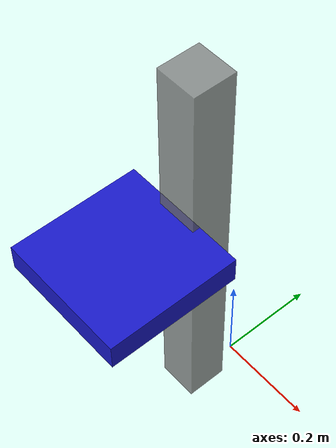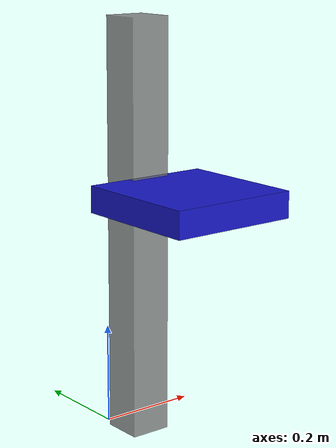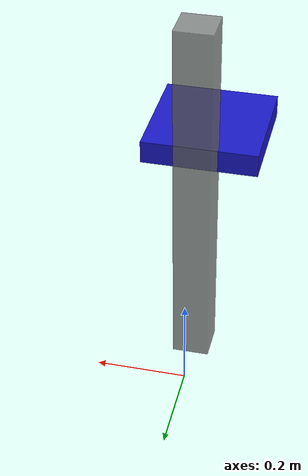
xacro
<?xml version="1.0"?>
<robot name="linear_guide" xmlns:xacro="http://ros.org/wiki/xacro">

  <link name="column">
    <visual>
      <geometry>
        <box size="0.08 0.08 0.8"/>
      </geometry>
      <origin xyz="0 -0.1 0.42" rpy="0 0 0"/>
      <material name="grey">
        <color rgba="0.5 0.5 0.5 0.8"/>
      </material>
    </visual>
    <collision>
      <geometry>
        <box size="0.08 0.08 0.8"/>
      </geometry>
      <origin xyz="0 -0.1 0.37" rpy="0 0 0"/>
    </collision>
    <inertial>
      <mass value="0.0001"/>
      <inertia ixx="0.1" iyy="0.1" izz="0.1" ixy="0.0" ixz="0.0" iyz="0.0"/>
    </inertial>
  </link>

    <gazebo reference="column">
      <material>Gazebo/Orange</material>
  </gazebo>

  <link name="slider">
    <visual>
      <geometry>
        <box size="0.25 0.25 0.05"/>
      </geometry>
      <origin xyz="0 -0.25 0.05" rpy="0 0 0"/>
      <material name="blue">
        <color rgba="0.1 0.1 0.8 1.0"/>
      </material>
    </visual>
    <collision>
      <geometry>
        <box size="0.25 0.25 0.05"/>
      </geometry>
      <origin xyz="0 -0.25 0.05" rpy="0 0 0"/>
    </collision>

    <inertial>
      <mass value="0.0001"/>
      <inertia ixx="0.1" iyy="0.1" izz="0.1" ixy="0.0" ixz="0.0" iyz="0.0"/>
    </inertial>
  </link>
 <gazebo reference="slider">
      <material>Gazebo/Grey</material>
  </gazebo>

  <joint name="slider_joint" type="fixed">
    <parent link="column"/>
    <child link="slider"/>
    <origin xyz="0 0 0.45" rpy="0 0 0"/>
    <axis xyz="0 0 1"/>
    <limit lower="0.0" upper="0.9" effort="200" velocity="0.3"/>
  </joint>

</robot>
